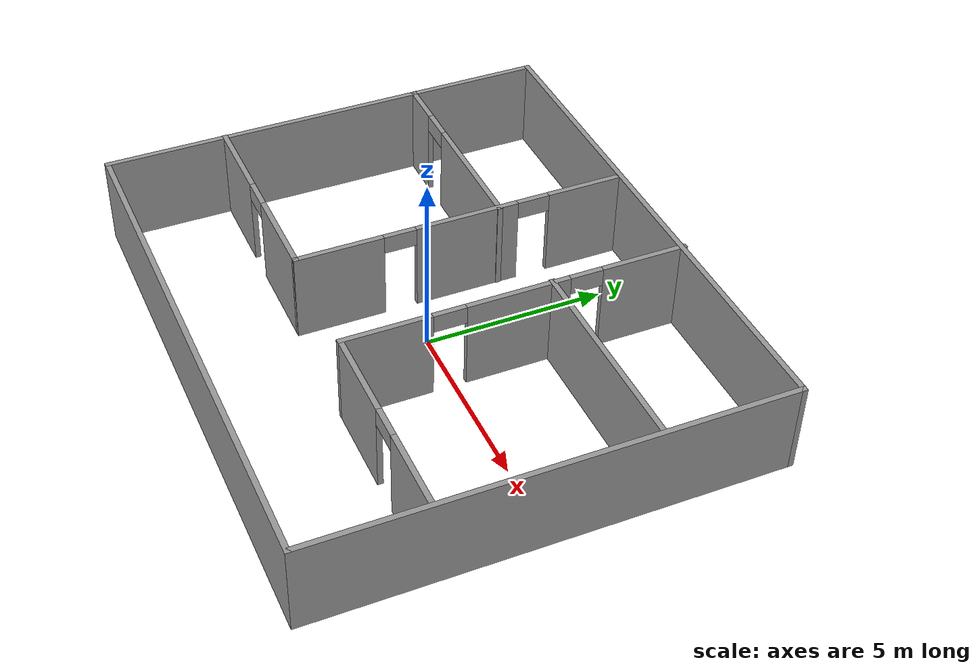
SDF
<?xml version='1.0'?>
<sdf version='1.7'>
  <model name='my_floor'>
    <pose>-0.036649 0.049256 0 0 -0 0</pose>
    <link name='Wall_27'>
      <collision name='Wall_27_Collision'>
        <geometry>
          <box>
            <size>15 0.15 2.5</size>
          </box>
        </geometry>
        <pose>0 0 1.25 0 -0 0</pose>
      </collision>
      <visual name='Wall_27_Visual'>
        <pose>0 0 1.25 0 -0 0</pose>
        <geometry>
          <box>
            <size>15 0.15 2.5</size>
          </box>
        </geometry>
        <material>
          <script>
            <uri>file://media/materials/scripts/gazebo.material</uri>
            <name>Gazebo/Grey</name>
          </script>
          <ambient>1 1 1 1</ambient>
        </material>
        <meta>
          <layer>0</layer>
        </meta>
      </visual>
      <pose>0.006822 -6.3282 0 0 -0 0</pose>
    </link>
    <link name='Wall_28'>
      <collision name='Wall_28_Collision'>
        <geometry>
          <box>
            <size>12.75 0.15 2.5</size>
          </box>
        </geometry>
        <pose>0 0 1.25 0 -0 0</pose>
      </collision>
      <visual name='Wall_28_Visual'>
        <pose>0 0 1.25 0 -0 0</pose>
        <geometry>
          <box>
            <size>12.75 0.15 2.5</size>
          </box>
        </geometry>
        <material>
          <script>
            <uri>file://media/materials/scripts/gazebo.material</uri>
            <name>Gazebo/Grey</name>
          </script>
          <ambient>1 1 1 1</ambient>
        </material>
        <meta>
          <layer>0</layer>
        </meta>
      </visual>
      <pose>7.43182 -0.028196 0 0 -0 1.5708</pose>
    </link>
    <link name='Wall_29'>
      <collision name='Wall_29_Collision'>
        <geometry>
          <box>
            <size>15 0.15 2.5</size>
          </box>
        </geometry>
        <pose>0 0 1.25 0 -0 0</pose>
      </collision>
      <visual name='Wall_29_Visual'>
        <pose>0 0 1.25 0 -0 0</pose>
        <geometry>
          <box>
            <size>15 0.15 2.5</size>
          </box>
        </geometry>
        <material>
          <script>
            <uri>file://media/materials/scripts/gazebo.material</uri>
            <name>Gazebo/Grey</name>
          </script>
          <ambient>1 1 1 1</ambient>
        </material>
        <meta>
          <layer>0</layer>
        </meta>
      </visual>
      <pose>0.006822 6.2718 0 0 -0 3.14159</pose>
    </link>
    <link name='Wall_30'>
      <collision name='Wall_30_Collision'>
        <geometry>
          <box>
            <size>12.75 0.15 2.5</size>
          </box>
        </geometry>
        <pose>0 0 1.25 0 -0 0</pose>
      </collision>
      <visual name='Wall_30_Visual'>
        <pose>0 0 1.25 0 -0 0</pose>
        <geometry>
          <box>
            <size>12.75 0.15 2.5</size>
          </box>
        </geometry>
        <material>
          <script>
            <uri>file://media/materials/scripts/gazebo.material</uri>
            <name>Gazebo/Grey</name>
          </script>
          <ambient>1 1 1 1</ambient>
        </material>
        <meta>
          <layer>0</layer>
        </meta>
      </visual>
      <pose>-7.41818 -0.028196 0 0 -0 -1.5708</pose>
    </link>
    <link name='Wall_32'>
      <pose>-4.50682 -2.98939 0 0 -0 0</pose>
      <visual name='Wall_32_Visual_0'>
        <pose>-1.76834 0 1.25 0 -0 0</pose>
        <geometry>
          <box>
            <size>2.46332 0.15 2.5</size>
          </box>
        </geometry>
        <material>
          <script>
            <uri>file://media/materials/scripts/gazebo.material</uri>
            <name>Gazebo/Grey</name>
          </script>
          <ambient>1 1 1 1</ambient>
        </material>
        <meta>
          <layer>0</layer>
        </meta>
      </visual>
      <collision name='Wall_32_Collision_0'>
        <geometry>
          <box>
            <size>2.46332 0.15 2.5</size>
          </box>
        </geometry>
        <pose>-1.76834 0 1.25 0 -0 0</pose>
      </collision>
      <visual name='Wall_32_Visual_1'>
        <pose>1.68166 0 1.25 0 -0 0</pose>
        <geometry>
          <box>
            <size>2.63668 0.15 2.5</size>
          </box>
        </geometry>
        <material>
          <script>
            <uri>file://media/materials/scripts/gazebo.material</uri>
            <name>Gazebo/Grey</name>
          </script>
          <ambient>1 1 1 1</ambient>
        </material>
        <meta>
          <layer>0</layer>
        </meta>
      </visual>
      <collision name='Wall_32_Collision_1'>
        <geometry>
          <box>
            <size>2.63668 0.15 2.5</size>
          </box>
        </geometry>
        <pose>1.68166 0 1.25 0 -0 0</pose>
      </collision>
      <visual name='Wall_32_Visual_2'>
        <pose>-0.086681 0 2.25 0 -0 0</pose>
        <geometry>
          <box>
            <size>0.9 0.15 0.5</size>
          </box>
        </geometry>
        <material>
          <script>
            <uri>file://media/materials/scripts/gazebo.material</uri>
            <name>Gazebo/Grey</name>
          </script>
          <ambient>1 1 1 1</ambient>
        </material>
        <meta>
          <layer>0</layer>
        </meta>
      </visual>
      <collision name='Wall_32_Collision_2'>
        <geometry>
          <box>
            <size>0.9 0.15 0.5</size>
          </box>
        </geometry>
        <pose>-0.086681 0 2.25 0 -0 0</pose>
      </collision>
    </link>
    <link name='Wall_33'>
      <pose>-1.58182 1.56061 0 0 -0 1.5708</pose>
      <visual name='Wall_33_Visual_0'>
        <pose>-3.39015 0 1.25 0 -0 0</pose>
        <geometry>
          <box>
            <size>2.4697 0.15 2.5</size>
          </box>
        </geometry>
        <material>
          <script>
            <uri>file://media/materials/scripts/gazebo.material</uri>
            <name>Gazebo/Grey</name>
          </script>
          <ambient>1 1 1 1</ambient>
        </material>
        <meta>
          <layer>0</layer>
        </meta>
      </visual>
      <collision name='Wall_33_Collision_0'>
        <geometry>
          <box>
            <size>2.4697 0.15 2.5</size>
          </box>
        </geometry>
        <pose>-3.39015 0 1.25 0 -0 0</pose>
      </collision>
      <visual name='Wall_33_Visual_1'>
        <pose>0.194349 0 1.25 0 -0 0</pose>
        <geometry>
          <box>
            <size>2.89931 0.15 2.5</size>
          </box>
        </geometry>
        <material>
          <script>
            <uri>file://media/materials/scripts/gazebo.material</uri>
            <name>Gazebo/Grey</name>
          </script>
          <ambient>1 1 1 1</ambient>
        </material>
        <meta>
          <layer>0</layer>
        </meta>
      </visual>
      <collision name='Wall_33_Collision_1'>
        <geometry>
          <box>
            <size>2.89931 0.15 2.5</size>
          </box>
        </geometry>
        <pose>0.194349 0 1.25 0 -0 0</pose>
      </collision>
      <visual name='Wall_33_Visual_2'>
        <pose>3.5845 0 1.25 0 -0 0</pose>
        <geometry>
          <box>
            <size>2.081 0.15 2.5</size>
          </box>
        </geometry>
        <material>
          <script>
            <uri>file://media/materials/scripts/gazebo.material</uri>
            <name>Gazebo/Grey</name>
          </script>
          <ambient>1 1 1 1</ambient>
        </material>
        <meta>
          <layer>0</layer>
        </meta>
      </visual>
      <collision name='Wall_33_Collision_2'>
        <geometry>
          <box>
            <size>2.081 0.15 2.5</size>
          </box>
        </geometry>
        <pose>3.5845 0 1.25 0 -0 0</pose>
      </collision>
      <visual name='Wall_33_Visual_3'>
        <pose>-1.7053 0 2.25 0 -0 0</pose>
        <geometry>
          <box>
            <size>0.9 0.15 0.5</size>
          </box>
        </geometry>
        <material>
          <script>
            <uri>file://media/materials/scripts/gazebo.material</uri>
            <name>Gazebo/Grey</name>
          </script>
          <ambient>1 1 1 1</ambient>
        </material>
        <meta>
          <layer>0</layer>
        </meta>
      </visual>
      <collision name='Wall_33_Collision_3'>
        <geometry>
          <box>
            <size>0.9 0.15 0.5</size>
          </box>
        </geometry>
        <pose>-1.7053 0 2.25 0 -0 0</pose>
      </collision>
      <visual name='Wall_33_Visual_4'>
        <pose>2.094 0 2.25 0 -0 0</pose>
        <geometry>
          <box>
            <size>0.9 0.15 0.5</size>
          </box>
        </geometry>
        <material>
          <script>
            <uri>file://media/materials/scripts/gazebo.material</uri>
            <name>Gazebo/Grey</name>
          </script>
          <ambient>1 1 1 1</ambient>
        </material>
        <meta>
          <layer>0</layer>
        </meta>
      </visual>
      <collision name='Wall_33_Collision_4'>
        <geometry>
          <box>
            <size>0.9 0.15 0.5</size>
          </box>
        </geometry>
        <pose>2.094 0 2.25 0 -0 0</pose>
      </collision>
    </link>
    <link name='Wall_35'>
      <pose>-4.4828 2.6696 0 0 -0 0</pose>
      <visual name='Wall_35_Visual_0'>
        <pose>-2.34321 0 1.25 0 -0 0</pose>
        <geometry>
          <box>
            <size>1.31358 0.15 2.5</size>
          </box>
        </geometry>
        <material>
          <script>
            <uri>file://media/materials/scripts/gazebo.material</uri>
            <name>Gazebo/Grey</name>
          </script>
          <ambient>1 1 1 1</ambient>
        </material>
        <meta>
          <layer>0</layer>
        </meta>
      </visual>
      <collision name='Wall_35_Collision_0'>
        <geometry>
          <box>
            <size>1.31358 0.15 2.5</size>
          </box>
        </geometry>
        <pose>-2.34321 0 1.25 0 -0 0</pose>
      </collision>
      <visual name='Wall_35_Visual_1'>
        <pose>1.10679 0 1.25 0 -0 0</pose>
        <geometry>
          <box>
            <size>3.78642 0.15 2.5</size>
          </box>
        </geometry>
        <material>
          <script>
            <uri>file://media/materials/scripts/gazebo.material</uri>
            <name>Gazebo/Grey</name>
          </script>
          <ambient>1 1 1 1</ambient>
        </material>
        <meta>
          <layer>0</layer>
        </meta>
      </visual>
      <collision name='Wall_35_Collision_1'>
        <geometry>
          <box>
            <size>3.78642 0.15 2.5</size>
          </box>
        </geometry>
        <pose>1.10679 0 1.25 0 -0 0</pose>
      </collision>
      <visual name='Wall_35_Visual_2'>
        <pose>-1.23642 0 2.25 0 -0 0</pose>
        <geometry>
          <box>
            <size>0.9 0.15 0.5</size>
          </box>
        </geometry>
        <material>
          <script>
            <uri>file://media/materials/scripts/gazebo.material</uri>
            <name>Gazebo/Grey</name>
          </script>
          <ambient>1 1 1 1</ambient>
        </material>
        <meta>
          <layer>0</layer>
        </meta>
      </visual>
      <collision name='Wall_35_Collision_2'>
        <geometry>
          <box>
            <size>0.9 0.15 0.5</size>
          </box>
        </geometry>
        <pose>-1.23642 0 2.25 0 -0 0</pose>
      </collision>
    </link>
    <link name='Wall_37'>
      <pose>1.73867 1.6532 0 0 -0 -1.5708</pose>
      <visual name='Wall_37_Visual_0'>
        <pose>-3.54794 0 1.25 0 -0 0</pose>
        <geometry>
          <box>
            <size>2.40412 0.15 2.5</size>
          </box>
        </geometry>
        <material>
          <script>
            <uri>file://media/materials/scripts/gazebo.material</uri>
            <name>Gazebo/Grey</name>
          </script>
          <ambient>1 1 1 1</ambient>
        </material>
        <meta>
          <layer>0</layer>
        </meta>
      </visual>
      <collision name='Wall_37_Collision_0'>
        <geometry>
          <box>
            <size>2.40412 0.15 2.5</size>
          </box>
        </geometry>
        <pose>-3.54794 0 1.25 0 -0 0</pose>
      </collision>
      <visual name='Wall_37_Visual_1'>
        <pose>-0.031403 0 1.25 0 -0 0</pose>
        <geometry>
          <box>
            <size>2.82895 0.15 2.5</size>
          </box>
        </geometry>
        <material>
          <script>
            <uri>file://media/materials/scripts/gazebo.material</uri>
            <name>Gazebo/Grey</name>
          </script>
          <ambient>1 1 1 1</ambient>
        </material>
        <meta>
          <layer>0</layer>
        </meta>
      </visual>
      <collision name='Wall_37_Collision_1'>
        <geometry>
          <box>
            <size>2.82895 0.15 2.5</size>
          </box>
        </geometry>
        <pose>-0.031403 0 1.25 0 -0 0</pose>
      </collision>
      <visual name='Wall_37_Visual_2'>
        <pose>3.51654 0 1.25 0 -0 0</pose>
        <geometry>
          <box>
            <size>2.46693 0.15 2.5</size>
          </box>
        </geometry>
        <material>
          <script>
            <uri>file://media/materials/scripts/gazebo.material</uri>
            <name>Gazebo/Grey</name>
          </script>
          <ambient>1 1 1 1</ambient>
        </material>
        <meta>
          <layer>0</layer>
        </meta>
      </visual>
      <collision name='Wall_37_Collision_2'>
        <geometry>
          <box>
            <size>2.46693 0.15 2.5</size>
          </box>
        </geometry>
        <pose>3.51654 0 1.25 0 -0 0</pose>
      </collision>
      <visual name='Wall_37_Visual_3'>
        <pose>-1.89588 0 2.25 0 -0 0</pose>
        <geometry>
          <box>
            <size>0.9 0.15 0.5</size>
          </box>
        </geometry>
        <material>
          <script>
            <uri>file://media/materials/scripts/gazebo.material</uri>
            <name>Gazebo/Grey</name>
          </script>
          <ambient>1 1 1 1</ambient>
        </material>
        <meta>
          <layer>0</layer>
        </meta>
      </visual>
      <collision name='Wall_37_Collision_3'>
        <geometry>
          <box>
            <size>0.9 0.15 0.5</size>
          </box>
        </geometry>
        <pose>-1.89588 0 2.25 0 -0 0</pose>
      </collision>
      <visual name='Wall_37_Visual_4'>
        <pose>1.83307 0 2.25 0 -0 0</pose>
        <geometry>
          <box>
            <size>0.9 0.15 0.5</size>
          </box>
        </geometry>
        <material>
          <script>
            <uri>file://media/materials/scripts/gazebo.material</uri>
            <name>Gazebo/Grey</name>
          </script>
          <ambient>1 1 1 1</ambient>
        </material>
        <meta>
          <layer>0</layer>
        </meta>
      </visual>
      <collision name='Wall_37_Collision_4'>
        <geometry>
          <box>
            <size>0.9 0.15 0.5</size>
          </box>
        </geometry>
        <pose>1.83307 0 2.25 0 -0 0</pose>
      </collision>
    </link>
    <link name='Wall_38'>
      <pose>4.53867 -3.0218 0 0 -0 0</pose>
      <visual name='Wall_38_Visual_0'>
        <pose>-1.58499 0 1.25 0 -0 0</pose>
        <geometry>
          <box>
            <size>2.58002 0.15 2.5</size>
          </box>
        </geometry>
        <material>
          <script>
            <uri>file://media/materials/scripts/gazebo.material</uri>
            <name>Gazebo/Grey</name>
          </script>
          <ambient>1 1 1 1</ambient>
        </material>
        <meta>
          <layer>0</layer>
        </meta>
      </visual>
      <collision name='Wall_38_Collision_0'>
        <geometry>
          <box>
            <size>2.58002 0.15 2.5</size>
          </box>
        </geometry>
        <pose>-1.58499 0 1.25 0 -0 0</pose>
      </collision>
      <visual name='Wall_38_Visual_1'>
        <pose>1.74001 0 1.25 0 -0 0</pose>
        <geometry>
          <box>
            <size>2.26998 0.15 2.5</size>
          </box>
        </geometry>
        <material>
          <script>
            <uri>file://media/materials/scripts/gazebo.material</uri>
            <name>Gazebo/Grey</name>
          </script>
          <ambient>1 1 1 1</ambient>
        </material>
        <meta>
          <layer>0</layer>
        </meta>
      </visual>
      <collision name='Wall_38_Collision_1'>
        <geometry>
          <box>
            <size>2.26998 0.15 2.5</size>
          </box>
        </geometry>
        <pose>1.74001 0 1.25 0 -0 0</pose>
      </collision>
      <visual name='Wall_38_Visual_2'>
        <pose>0.155016 0 2.25 0 -0 0</pose>
        <geometry>
          <box>
            <size>0.9 0.15 0.5</size>
          </box>
        </geometry>
        <material>
          <script>
            <uri>file://media/materials/scripts/gazebo.material</uri>
            <name>Gazebo/Grey</name>
          </script>
          <ambient>1 1 1 1</ambient>
        </material>
        <meta>
          <layer>0</layer>
        </meta>
      </visual>
      <collision name='Wall_38_Collision_2'>
        <geometry>
          <box>
            <size>0.9 0.15 0.5</size>
          </box>
        </geometry>
        <pose>0.155016 0 2.25 0 -0 0</pose>
      </collision>
    </link>
    <link name='Wall_40'>
      <collision name='Wall_40_Collision'>
        <geometry>
          <box>
            <size>5.75 0.15 2.5</size>
          </box>
        </geometry>
        <pose>0 0 1.25 0 -0 0</pose>
      </collision>
      <visual name='Wall_40_Visual'>
        <pose>0 0 1.25 0 -0 0</pose>
        <geometry>
          <box>
            <size>5.75 0.15 2.5</size>
          </box>
        </geometry>
        <material>
          <script>
            <uri>file://media/materials/scripts/gazebo.material</uri>
            <name>Gazebo/Grey</name>
          </script>
          <ambient>1 1 1 1</ambient>
        </material>
        <meta>
          <layer>0</layer>
        </meta>
      </visual>
      <pose>4.5035 2.63443 0 0 -0 0</pose>
    </link>
    <static>1</static>
  </model>
</sdf>
